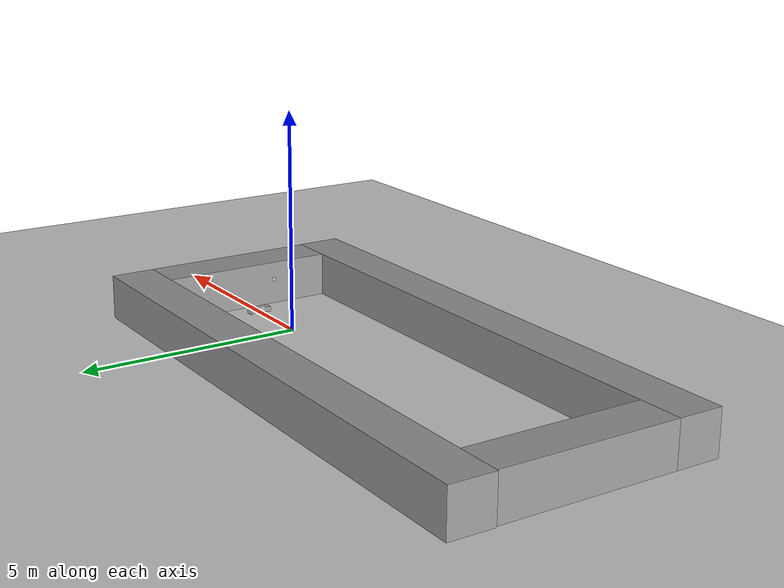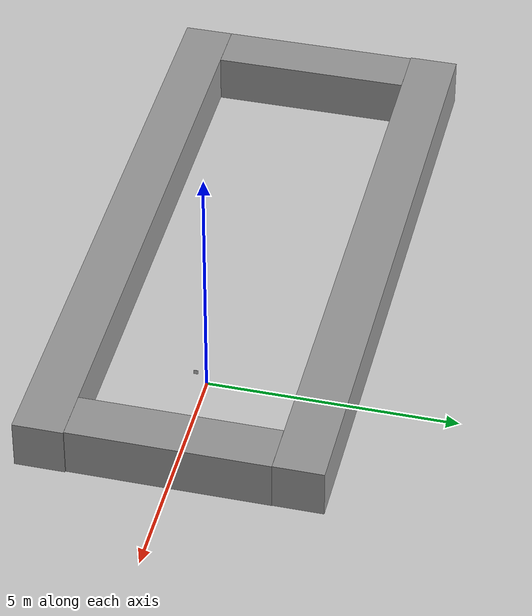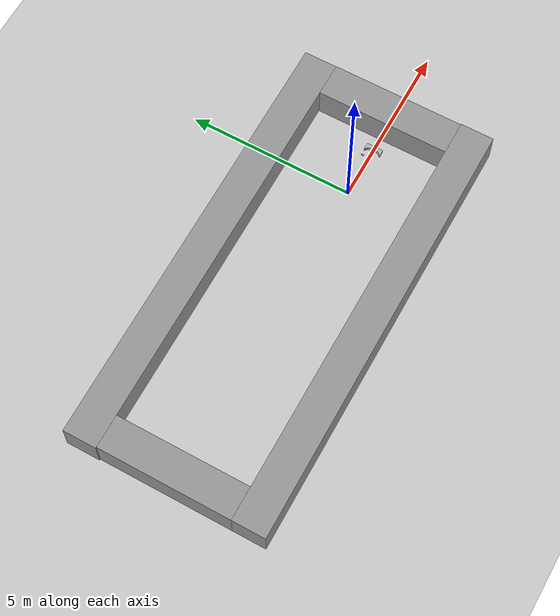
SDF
<sdf version="1.6">
 <world name="default">
  <physics name="default_physics" default="0" type="ode">
   <ode>
    <solver>
     <type>quick</type>
     <iters>20</iters>
     <sor>1</sor>
     <use_dynamic_moi_rescaling>0</use_dynamic_moi_rescaling>
    </solver>
    <constraints>
     <cfm>0</cfm>
     <erp>0.2</erp>
     <contact_max_correcting_vel>100</contact_max_correcting_vel>
     <contact_surface_layer>0</contact_surface_layer>
    </constraints>
   </ode>
   <real_time_update_rate>1000</real_time_update_rate>
   <max_step_size>0.001</max_step_size>
   <real_time_factor>1</real_time_factor>
  </physics>
  <light name="sun" type="directional">
   <pose>0 0 10 0 -0 0</pose>
   <diffuse>0.8 0.8 0.8 1</diffuse>
   <specular>0.2 0.2 0.2 1</specular>
   <attenuation>
    <range>1000</range>
    <constant>0.9</constant>
    <linear>0.01</linear>
    <quadratic>0.001</quadratic>
   </attenuation>
   <direction>-0.5 0.1 -0.9</direction>
  </light>
  <model name="ground_plane">
   <static>1</static>
   <link name="link">
    <collision name="collision">
     <geometry><plane><normal>0 0 1</normal><size>100 100</size></plane></geometry>
     <surface>
      <contact><collide_bitmask>65535</collide_bitmask></contact>
      <friction><ode><mu>100</mu><mu2>50</mu2></ode></friction>
     </surface>
    </collision>
    <visual name="visual">
     <cast_shadows>0</cast_shadows>
     <geometry><plane><normal>0 0 1</normal><size>100 100</size></plane></geometry>
     <material>
      <script><uri>file://media/materials/scripts/gazebo.material</uri><name>Gazebo/Grey</name></script>
     </material>
    </visual>
   </link>
  </model>
  <model name="aruco_marker_9cm_582">
   <static>1</static>
   <link name="marker">
    <inertial>
     <mass>0.1</mass>
     <inertia><ixx>0</ixx><ixy>0</ixy><ixz>0</ixz><iyy>0</iyy><iyz>0</iyz><izz>0</izz></inertia>
    </inertial>
    <visual name="visual">
     <pose>0 0 0 0 -0 1.57</pose>
     <geometry><box><size>0.09 0.09 0.001</size></box></geometry>
     <material>
      <script>
       <uri>model://aruco_marker_9cm_582/material/scripts</uri>
       <uri>model://aruco_marker_9cm_582/material/textures</uri>
       <name>Aruco/aruco_marker_9cm_582</name>
      </script>
     </material>
    </visual>
    <collision name="collision"><geometry><box><size>0.09 0.09 0.001</size></box></geometry></collision>
    <self_collide>1</self_collide>
   </link>
   <pose>0.8 0 1 1.57 -0 1.57</pose>
  </model>
  <model name="dock">
   <pose>1.5 0 0 0 -0 0</pose>
   <static>1</static>
   <link name="link">
    <inertial>
     <mass>1</mass>
     <inertia><ixx>0.083</ixx><ixy>0</ixy><ixz>0</ixz><iyy>0.083</iyy><iyz>0</iyz><izz>0.083</izz></inertia>
    </inertial>
    <collision name="collision">
     <geometry><mesh><uri>model://dock1/meshes/dock1.dae</uri></mesh></geometry>
    </collision>
    <visual name="visual"><geometry><mesh><uri>model://dock1/meshes/dock1.dae</uri></mesh></geometry></visual>
   </link>
  </model>
  <gravity>0 0 -9.81</gravity>
  <magnetic_field>6e-06 2.3e-05 -4.2e-05</magnetic_field>
  <atmosphere type="adiabatic"/>
  <scene><ambient>0.4 0.4 0.4 1</ambient><background>0.7 0.7 0.7 1</background><shadows>1</shadows></scene>
  <spherical_coordinates>
   <surface_model>EARTH_WGS84</surface_model>
   <latitude_deg>0</latitude_deg>
   <longitude_deg>0</longitude_deg>
   <elevation>0</elevation>
   <heading_deg>0</heading_deg>
  </spherical_coordinates>
  <model name="unit_box">
   <pose>2.4993 0.01153 0.5 0 3e-06 0.000613</pose>
   <link name="link">
    <inertial>
     <mass>1</mass>
     <inertia>
      <ixx>0.166667</ixx>
      <ixy>0</ixy>
      <ixz>0</ixz>
      <iyy>0.166667</iyy>
      <iyz>0</iyz>
      <izz>0.166667</izz>
     </inertia>
    </inertial>
    <collision name="collision"><geometry><box><size>1 3.98688 1</size></box></geometry></collision>
    <visual name="visual">
     <geometry><box><size>1 3.98688 1</size></box></geometry>
     <material>
      <script><name>Gazebo/Grey</name><uri>file://media/materials/scripts/gazebo.material</uri></script>
     </material>
    </visual>
   </link>
  </model>
  <model name="unit_box_0">
   <pose>-3.56217 2.50441 0.499933 -2.8e-05 9e-06 0.000205</pose>
   <link name="link">
    <inertial>
     <mass>1</mass>
     <inertia>
      <ixx>0.166667</ixx>
      <ixy>0</ixy>
      <ixz>0</ixz>
      <iyy>0.166667</iyy>
      <iyz>0</iyz>
      <izz>0.166667</izz>
     </inertia>
    </inertial>
    <collision name="collision"><geometry><box><size>13.1048 1 1</size></box></geometry></collision>
    <visual name="visual">
     <geometry><box><size>13.1048 1 1</size></box></geometry>
     <material>
      <script><name>Gazebo/Grey</name><uri>file://media/materials/scripts/gazebo.material</uri></script>
     </material>
    </visual>
   </link>
  </model>
  <model name="unit_box_0_clone">
   <pose>-3.52786 -2.48369 0.499933 -2.8e-05 9e-06 0.000192</pose>
   <link name="link">
    <inertial>
     <mass>1</mass>
     <inertia>
      <ixx>0.166667</ixx>
      <ixy>0</ixy>
      <ixz>0</ixz>
      <iyy>0.166667</iyy>
      <iyz>0</iyz>
      <izz>0.166667</izz>
     </inertia>
    </inertial>
    <collision name="collision"><geometry><box><size>13.1048 1 1</size></box></geometry></collision>
    <visual name="visual">
     <geometry><box><size>13.1048 1 1</size></box></geometry>
     <material>
      <script><name>Gazebo/Grey</name><uri>file://media/materials/scripts/gazebo.material</uri></script>
     </material>
    </visual>
   </link>
  </model>
  <model name="unit_box_clone">
   <pose>-9.58195 0.009168 0.499997 -0 -4e-06 0.000612</pose>
   <link name="link">
    <inertial>
     <mass>1</mass>
     <inertia>
      <ixx>0.166667</ixx>
      <ixy>0</ixy>
      <ixz>0</ixz>
      <iyy>0.166667</iyy>
      <iyz>0</iyz>
      <izz>0.166667</izz>
     </inertia>
    </inertial>
    <collision name="collision"><geometry><box><size>1 3.98688 1</size></box></geometry></collision>
    <visual name="visual">
     <geometry><box><size>1 3.98688 1</size></box></geometry>
     <material>
      <script><name>Gazebo/Grey</name><uri>file://media/materials/scripts/gazebo.material</uri></script>
     </material>
    </visual>
   </link>
  </model>
 </world>
</sdf>
